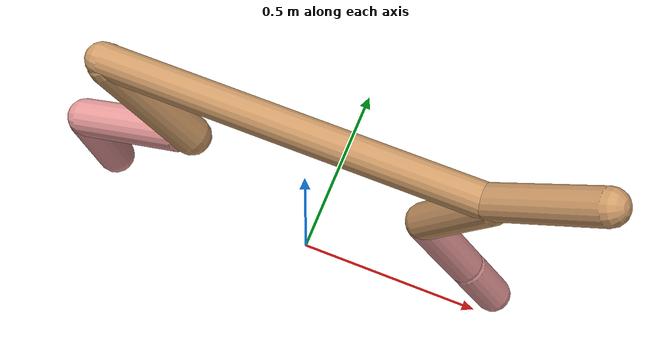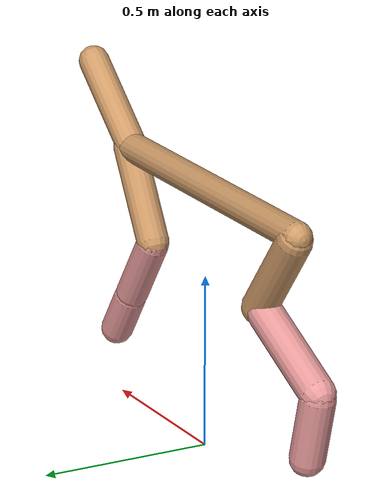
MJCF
<mujoco model="cheetah">
  <compiler angle="radian" coordinate="local" inertiafromgeom="true" settotalmass="14" />
  <default>
    <joint armature=".1" damping=".01" limited="true" solimplimit="0 .8 .03" solreflimit=".02 1" stiffness="8" />
    <geom conaffinity="0" condim="3" contype="1" friction="0.8 .1 .1" rgba="0.8 0.6 .4 1" solimp="0.0 0.8 0.01" solref="0.02 1" />
    <motor ctrllimited="true" ctrlrange="-1 1" />
  </default>
  <size nstack="300000" nuser_geom="1" />
  <option gravity="0 0 -9.81" timestep="0.01" />
  <worldbody>
    <body name="torso" pos="0.0 0.0 0.7593718606564254">
      <joint armature="0" axis="1 0 0" damping="0" limited="false" name="ignorex" pos="0 0 0" stiffness="0" type="slide" />
      <joint armature="0" axis="0 0 1" damping="0" limited="false" name="ignorez" pos="0 0 0" stiffness="0" type="slide" />
      <joint armature="0" axis="0 1 0" damping="0" limited="false" name="ignorey" pos="0 0 0" stiffness="0" type="hinge" />
      <geom fromto="-0.5 0.0 0.0 0.45166069890221827 0.0 0.0" name="torso" size="0.04280873656663318" type="capsule" />
      <geom axisangle="0 1 0 .87" name="head" pos="0.5516606989022182 0.0 0.1" size="0.0440895647284617 0.15" type="capsule" />

      <body name="bthigh" pos="-.5 0 0">
        <joint axis="0 1 0" damping="6" name="bthigh" pos="0 0 0" range="-.52 1.05" stiffness="240" type="hinge" />
        <geom axisangle="0 1 0 -3.8" name="bthigh" pos="0.10444826359187645 0.0 -0.13578274266943938" size="0.05043499938593333 0.1522956947416794" type="capsule" />
        <body name="bshin" pos="0.1688965271837529 0.0 -0.26156548533887874">
          <joint axis="0 1 0" damping="4.5" name="bshin" pos="0 0 0" range="-.785 .785" stiffness="180" type="hinge" />
          <geom axisangle="0 1 0 -2.03" name="bshin" pos="-0.14675048388364811 0.0 -0.07337524194182406" rgba="0.9 0.6 0.6 1" size="0.05043499938593333 0.15754727042242697" type="capsule" />
          <body name="bfoot" pos="-0.29350096776729623 0.0 -0.14675048388364811">
            <joint axis="0 1 0" damping="3" name="bfoot" pos="0 0 0" range="-.4 .785" stiffness="120" type="hinge" />
            <geom axisangle="0 1 0 -.27" name="bfoot" pos="0.03139746033766698 0.0 -0.1015184550917899" rgba="0.9 0.6 0.6 1" size="0.05043499938593333 0.09872962279805424" type="capsule" />
            <inertial mass="10" />
          </body>
        </body>
      </body>
      <body name="fthigh" pos="0.45166069890221827 0.0 0.0">
        <joint axis="0 1 0" damping="4.5" name="fthigh" pos="0 0 0" range="-1.5 0.8" stiffness="180" type="hinge" />
        <geom axisangle="0 1 0 .52" name="fthigh" pos="-0.07347228163089158 0.0 -0.1259524827958141" size="0.046684186466969396 0.13989121115325093" type="capsule" />
        <body name="fshin" pos="-0.14694456326178315 0.0 -0.2519049655916282">
          <joint axis="0 1 0" damping="3" name="fshin" pos="0 0 0" range="-1.2 1.1" stiffness="120" type="hinge" />
          <geom axisangle="0 1 0 -.6" name="fshin" pos="0.0682156566743322 0.0 -0.09445244770292151" rgba="0.9 0.6 0.6 1" size="0.046684186466969396 0.11149224347552328" type="capsule" />
          <body name="ffoot" pos="0.1364313133486644 0.0 -0.18890489540584302">
            <joint axis="0 1 0" damping="1.5" name="ffoot" pos="0 0 0" range="-3.1 -0.3" stiffness="60" type="hinge" />
            <geom axisangle="0 1 0 -.6" name="ffoot" pos="0.04696130249708668 0.0 -0.07305091499546817" rgba="0.9 0.6 0.6 1" size="0.046684186466969396 0.07362695323855312" type="capsule" />
            <inertial mass="10" />
          </body>
        </body>
      </body>
    </body>
  </worldbody>
  <actuator>
    <motor gear="120" joint="bthigh" name="bthigh" />
    <motor gear="90" joint="bshin" name="bshin" />
    <motor gear="60" joint="bfoot" name="bfoot" />
    <motor gear="120" joint="fthigh" name="fthigh" />
    <motor gear="60" joint="fshin" name="fshin" />
    <motor gear="30" joint="ffoot" name="ffoot" />
  </actuator>
</mujoco>
